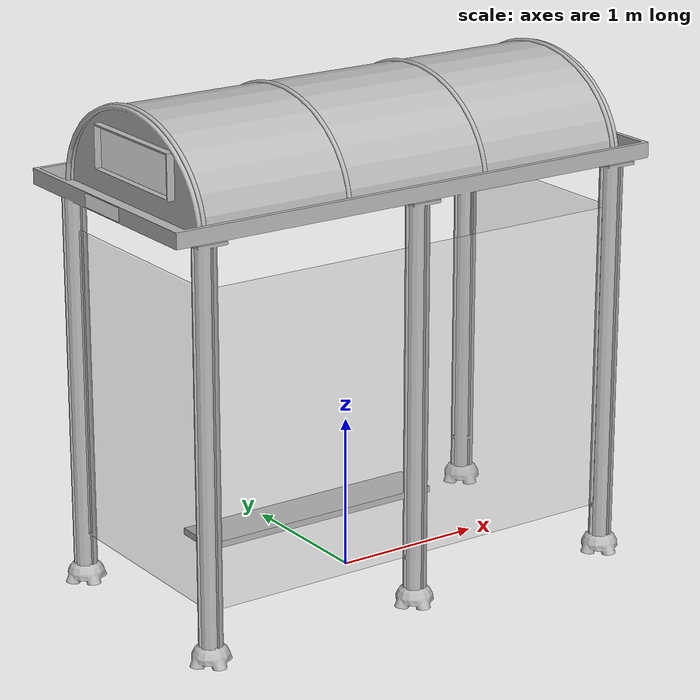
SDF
<?xml version="1.0" ?>
<sdf version='1.7'>
  <model name='bus_stop'>
    <link name='base_link'>
      <inertial>
        <pose>-0.028945 0.578968 0.865497 0 -0 0</pose>
        <mass>599.322</mass>
        <inertia>
          <ixx>1541.97</ixx>
          <ixy>-12.6703</ixy>
          <ixz>1.60713</ixz>
          <iyy>1635.91</iyy>
          <iyz>370.745</iyz>
          <izz>1773.29</izz>
        </inertia>
      </inertial>
      <collision name='base_link_collision'>
        <pose>0 0 0.12 0 -0 0</pose>
        <geometry>
          <mesh>
            <scale>1 1 1</scale>
            <uri>model://bus_stop/meshes/base_link.dae</uri>
          </mesh>
        </geometry>
      </collision>
      <collision name='base_link_fixed_joint_lump__bench_collision_1'>
        <pose>-0.68039 -0.585 0.76 -1.5708 0 -3.14159</pose>
        <geometry>
          <mesh>
            <scale>1 1 1</scale>
            <uri>model://bus_stop/meshes/bench.dae</uri>
          </mesh>
        </geometry>
      </collision>
      <collision name='base_link_fixed_joint_lump__board_collision_2'>
        <pose>-1.5 -0.022169 2.9407 -1.5708 -0 -1.5708</pose>
        <geometry>
          <box>
            <size>0.82 0.266 0.01</size>
          </box>
        </geometry>
      </collision>
      <collision name='base_link_fixed_joint_lump__glass1_collision_3'>
        <pose>1.49 -0.005 1.34 -3.14159 -0 1.5708</pose>
        <geometry>
          <mesh>
            <scale>1 1 1</scale>
            <uri>model://bus_stop/meshes/glass.STL</uri>
          </mesh>
        </geometry>
      </collision>
      <collision name='base_link_fixed_joint_lump__glass2_collision_4'>
        <pose>0.755 -0.76 1.34 3.14159 -0 -3.14159</pose>
        <geometry>
          <mesh>
            <scale>1 1 1</scale>
            <uri>model://bus_stop/meshes/glass.STL</uri>
          </mesh>
        </geometry>
      </collision>
      <collision name='base_link_fixed_joint_lump__glass3_collision_5'>
        <pose>-0.745 -0.74 1.34 -3.14159 0 0</pose>
        <geometry>
          <mesh>
            <scale>1 1 1</scale>
            <uri>model://bus_stop/meshes/glass.STL</uri>
          </mesh>
        </geometry>
      </collision>
      <collision name='base_link_fixed_joint_lump__glass4_collision_6'>
        <pose>-1.49 -0.005 1.34 -3.14159 0 -1.5708</pose>
        <geometry>
          <mesh>
            <scale>1 1 1</scale>
            <uri>model://bus_stop/meshes/glass.STL</uri>
          </mesh>
        </geometry>
      </collision>
      <collision name='base_link_fixed_joint_lump__head_collision_7'>
        <pose>0 0 2.64 1.5708 -0 0</pose>
        <geometry>
          <mesh>
            <scale>1 1 1</scale>
            <uri>model://bus_stop/meshes/head.dae</uri>
          </mesh>
        </geometry>
      </collision>
      <collision name='base_link_fixed_joint_lump__round1_collision_8'>
        <pose>1.5 0 2.64 1.57079 7e-06 3.14159</pose>
        <geometry>
          <mesh>
            <scale>1 1 1</scale>
            <uri>model://bus_stop/meshes/round.dae</uri>
          </mesh>
        </geometry>
      </collision>
      <collision name='base_link_fixed_joint_lump__round2_collision_9'>
        <pose>0.5 0 2.64 1.57079 7e-06 3.14159</pose>
        <geometry>
          <mesh>
            <scale>1 1 1</scale>
            <uri>model://bus_stop/meshes/round.dae</uri>
          </mesh>
        </geometry>
      </collision>
      <collision name='base_link_fixed_joint_lump__round3_collision_10'>
        <pose>-0.5 0 2.64 1.57079 7e-06 3.14159</pose>
        <geometry>
          <mesh>
            <scale>1 1 1</scale>
            <uri>model://bus_stop/meshes/round.dae</uri>
          </mesh>
        </geometry>
      </collision>
      <collision name='base_link_fixed_joint_lump__round4_collision_11'>
        <pose>-1.5 0 2.64 1.57079 7e-06 3.14159</pose>
        <geometry>
          <mesh>
            <scale>1 1 1</scale>
            <uri>model://bus_stop/meshes/round.dae</uri>
          </mesh>
        </geometry>
      </collision>
      <collision name='base_link_fixed_joint_lump__tag_collision_12'>
        <pose>-1.73 0 2.69 -1.5708 0 -1.5708</pose>
        <geometry>
          <box>
            <size>0.39 0.087 .002</size>
          </box>
        </geometry>
      </collision>
      <visual name='base_link_visual'>
        <pose>0 0 0.12 0 -0 0</pose>
        <geometry>
          <mesh>
            <scale>1 1 1</scale>
            <uri>model://bus_stop/meshes/base_link.dae</uri>
          </mesh>
        </geometry>
      </visual>
      <visual name='base_link_fixed_joint_lump__bench_visual_1'>
        <pose>-0.68039 -0.585 0.76 -1.5708 0 -3.14159</pose>
        <cast_shadows>false</cast_shadows>
        <geometry>
          <mesh>
            <scale>1 1 1</scale>
            <uri>model://bus_stop/meshes/bench.dae</uri>
          </mesh>
        </geometry>
      </visual>
      <visual name='base_link_fixed_joint_lump__board_visual_2'>
        <cast_shadows>false</cast_shadows>
        <pose>-1.5 -0.022169 2.9407 -1.5708 -0 -1.5708</pose>
        <geometry>
          <box>
            <size>0.82 0.266 0.01</size>
          </box>
        </geometry>
        <material><diffuse>1 1 1 1</diffuse><specular>0.1 0.1 0.1 1</specular></material>
      </visual>
      <visual name='base_link_fixed_joint_lump__glass1_visual_3'>
        <pose>1.49 -0.005 1.34 -3.14159 -0 1.5708</pose>
        <transparency>0.7</transparency>
        <geometry>
          <mesh>
            <scale>1 1 1</scale>
            <uri>model://bus_stop/meshes/glass.STL</uri>
          </mesh>
        </geometry>
      </visual>
      <visual name='base_link_fixed_joint_lump__glass2_visual_4'>
        <pose>0.755 -0.76 1.34 3.14159 -0 -3.14159</pose>
        <transparency>0.7</transparency>
        <geometry>
          <mesh>
            <scale>1 1 1</scale>
            <uri>model://bus_stop/meshes/glass.STL</uri>
          </mesh>
        </geometry>
      </visual>
      <visual name='base_link_fixed_joint_lump__glass3_visual_5'>
        <pose>-0.745 -0.74 1.34 -3.14159 0 0</pose>
        <transparency>0.7</transparency>
        <geometry>
          <mesh>
            <scale>1 1 1</scale>
            <uri>model://bus_stop/meshes/glass.STL</uri>
          </mesh>
        </geometry>
      </visual>
      <visual name='base_link_fixed_joint_lump__glass4_visual_6'>
        <pose>-1.49 -0.005 1.34 -3.14159 0 -1.5708</pose>
        <transparency>0.7</transparency>
        <geometry>
          <mesh>
            <scale>1 1 1</scale>
            <uri>model://bus_stop/meshes/glass.STL</uri>
          </mesh>
        </geometry>
      </visual>
      <visual name='base_link_fixed_joint_lump__head_visual_7'>
        <pose>0 0 2.64 1.5708 -0 0</pose>
        <geometry>
          <mesh>
            <scale>1 1 1</scale>
            <uri>model://bus_stop/meshes/head.dae</uri>
          </mesh>
        </geometry>
      </visual>
      <visual name='base_link_fixed_joint_lump__round1_visual_8'>
        <pose>1.5 0 2.64 1.57079 7e-06 3.14159</pose>
        <geometry>
          <mesh>
            <scale>1 1 1</scale>
            <uri>model://bus_stop/meshes/round.dae</uri>
          </mesh>
        </geometry>
      </visual>
      <visual name='base_link_fixed_joint_lump__round2_visual_9'>
        <pose>0.5 0 2.64 1.57079 7e-06 3.14159</pose>
        <geometry>
          <mesh>
            <scale>1 1 1</scale>
            <uri>model://bus_stop/meshes/round.dae</uri>
          </mesh>
        </geometry>
      </visual>
      <visual name='base_link_fixed_joint_lump__round3_visual_10'>
        <pose>-0.5 0 2.64 1.57079 7e-06 3.14159</pose>
        <geometry>
          <mesh>
            <scale>1 1 1</scale>
            <uri>model://bus_stop/meshes/round.dae</uri>
          </mesh>
        </geometry>
      </visual>
      <visual name='base_link_fixed_joint_lump__round4_visual_11'>
        <pose>-1.5 0 2.64 1.57079 7e-06 3.14159</pose>
        <geometry>
          <mesh>
            <scale>1 1 1</scale>
            <uri>model://bus_stop/meshes/round.dae</uri>
          </mesh>
        </geometry>
      </visual>
      <visual name='base_link_fixed_joint_lump__tag_visual_12'>
        <pose>-1.73 0 2.69 -1.5708 0 -1.5708</pose>
        <geometry>
          <box>
            <size>0.39 0.087 .002</size>
          </box>
        </geometry>
        <material><diffuse>1 1 1 1</diffuse><specular>0.1 0.1 0.1 1</specular></material>
      </visual>
    </link>
  </model>
</sdf>
